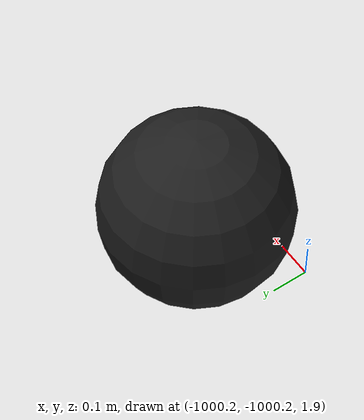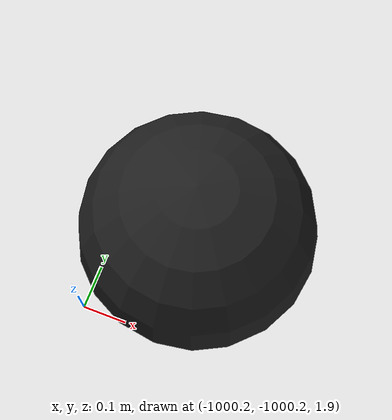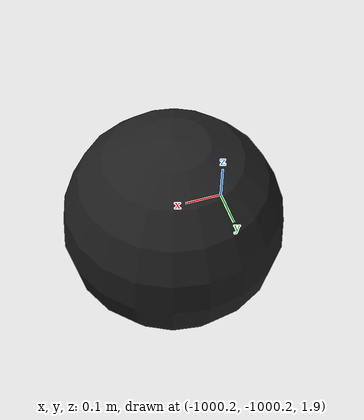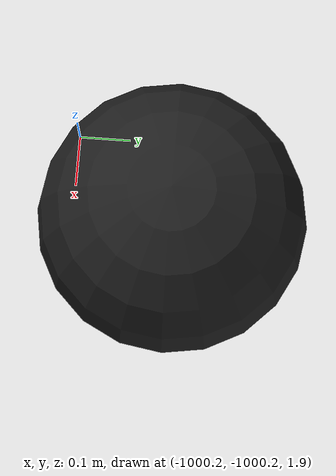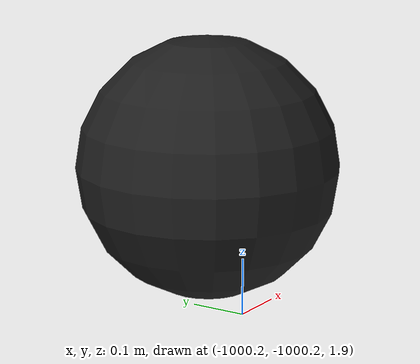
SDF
<sdf version="1.7">
 <world name="default">
  <model name="the_void">
   <static>1</static>
   <link name="link">
    <pose>0 0 0.1 0 -0 0</pose>
    <visual name="the_void">
     <pose>0 0 2 0 -0 0</pose>
     <geometry><sphere><radius>0.25</radius></sphere></geometry>
     <material>
      <script><uri>file://media/materials/scripts/Gazebo.material</uri><name>Gazebo/Black</name></script>
     </material>
    </visual>
   </link>
   <pose>-1000 -1000 0 0 -0 0</pose>
  </model>
 </world>
</sdf>
